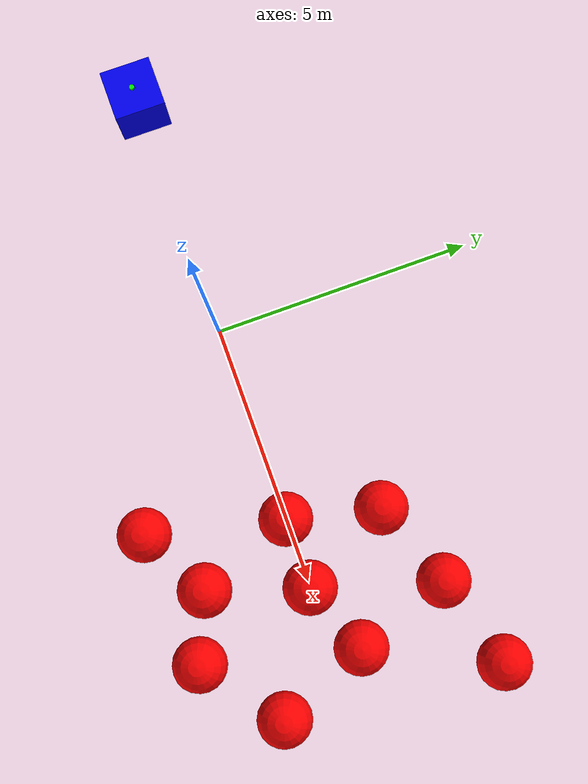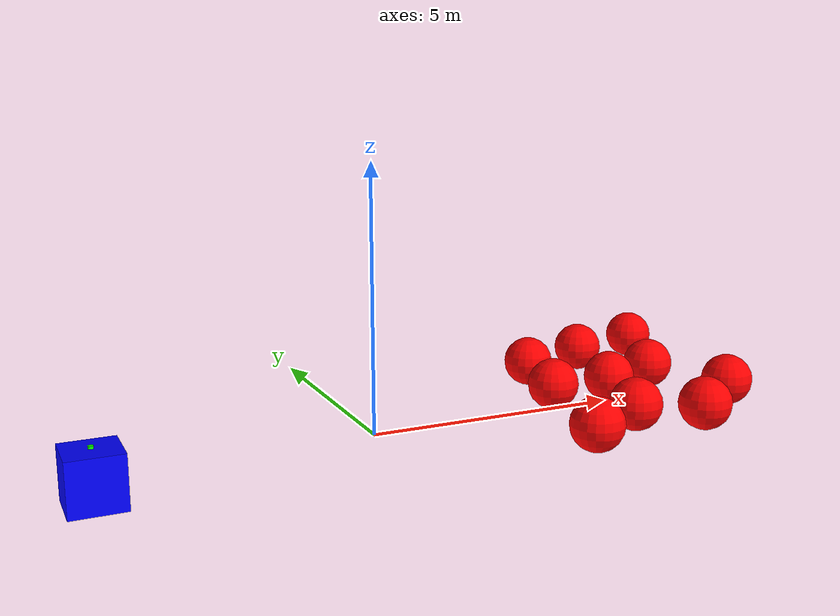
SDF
<?xml version="1.0" ?>
<sdf version="1.8">
    <world name="3d_world">
        <physics name="1ms" type="ode">
            <max_step_size>0.001</max_step_size>
            <real_time_factor>1.0</real_time_factor>
            <real_time_update_rate>1000.0</real_time_update_rate>
        </physics>
        <gravity>0 0 0</gravity> <!-- World-level gravity disabled -->

        <plugin
            filename="gz-sim-physics-system"
            name="gz::sim::v8::systems::Physics">
        </plugin>
        <plugin
            filename="libignition-gazebo-user-commands-system.so"
            name="ignition::gazebo::systems::UserCommands">
        </plugin>
        <plugin
            filename="gz-sim-scene-broadcaster-system"
            name="gz::sim::systems::SceneBroadcaster">
        </plugin>
        <!-- Added Sensors system plugin -->
        <plugin
            filename="gz-sim-sensors-system"
            name="gz::sim::systems::Sensors">
            <render_engine>ogre2</render_engine>
        </plugin>

        <light type="directional" name="sun">
            <cast_shadows>true</cast_shadows>
            <pose>0 0 10 0 0 0</pose>
            <diffuse>0.8 0.8 0.8 1</diffuse>
            <specular>0.2 0.2 0.2 1</specular>
            <attenuation>
                <range>1000</range>
                <constant>0.9</constant>
                <linear>0.01</linear>
                <quadratic>0.001</quadratic>
            </attenuation>
            <direction>-0.5 0.1 -0.9</direction>
        </light>

        <!--!AGENTE -->
        <model name='agente' canonical_link='chassis'>
            <pose relative_to='world'>-5.0 0 0.0 0 0 0</pose> <!-- Adjusted z-position to 0.0 -->
            <link name='chassis'>
                <pose relative_to='__model__'>0.0 0 0.0 0 0 0</pose>
                <inertial>
                    <mass>1.14395</mass>
                    <inertia>
                        <ixx>0.095329</ixx>
                        <ixy>0</ixy>
                        <ixz>0</ixz>
                        <iyy>0.381317</iyy>
                        <iyz>0</iyz>
                        <izz>0.476646</izz>
                    </inertia>
                </inertial>
                <visual name='visual'>
                    <geometry>
                        <box>
                            <size>1.0 1.0 1.0</size> <!-- Changed height to 1.0 for cube chassis -->
                        </box>
                    </geometry>
                    <material>
                        <ambient>0.0 0.0 1.0 1</ambient>
                        <diffuse>0.0 0.0 1.0 1</diffuse>
                        <specular>0.0 0.0 1.0 1</specular>
                    </material>
                </visual>
                <collision name='collision'>
                    <geometry>
                        <box>
                            <size>1.0 1.0 1.0</size>
                        </box>
                    </geometry>
                </collision>
                <enable_gravity>false</enable_gravity>
            </link>

            <!-- Added LiDAR link -->
            <link name='lidar_link'>
                <pose relative_to='chassis'>0.0 0 0.5 0 0 0</pose>
                <inertial>
                    <mass>0.1</mass>
                    <inertia>
                        <ixx>0.000166667</ixx>
                        <iyy>0.000166667</iyy>
                        <izz>0.000166667</izz>
                    </inertia>
                </inertial>
                <collision name='collision'>
                    <geometry>
                        <cylinder>
                            <radius>0.05</radius>
                            <length>0.1</length>
                        </cylinder>
                    </geometry>
                </collision>
                <visual name='visual'>
                    <geometry>
                        <cylinder>
                            <radius>0.05</radius>
                            <length>0.1</length>
                        </cylinder>
                    </geometry>
                    <material>
                        <ambient>0.0 1.0 0.0 1</ambient>
                        <diffuse>0.0 1.0 0.0 1</diffuse>
                        <specular>0.0 1.0 0.0 1</specular>
                    </material>
                </visual>
                <sensor name="lidar" type="gpu_lidar">
                    <topic>scan</topic>
                    <update_rate>10</update_rate>
                    <lidar>
                        <scan>
                            <horizontal>
                                <samples>5000</samples>
                                <resolution>1</resolution>
                                <min_angle>-3.14159</min_angle>
                                <max_angle>3.14159</max_angle>
                            </horizontal>
                        </scan>
                        <range>
                            <min>0.1</min>
                            <max>10.0</max>
                            <resolution>0.01</resolution>
                        </range>
                    </lidar>
                    <visualize>true</visualize>
                    <always_on>true</always_on>
                    <update_rate>10</update_rate>
                    <pose_frame>lidar</pose_frame>
                </sensor>
                <enable_gravity>false</enable_gravity>
            </link>

            <!-- Added joint to connect LiDAR to chassis -->
            <joint name="lidar_joint" type="fixed">
                <parent>chassis</parent>
                <child>lidar_link</child>
            </joint>

            <!-- plugin to publish-->
            <plugin
                filename="ignition-gazebo-joint-state-publisher-system"
                name="ignition::gazebo::systems::JointStatePublisher">
            </plugin>

            <plugin
                filename="ignition-gazebo-odometry-publisher-system"
                name="ignition::gazebo::systems::OdometryPublisher">
                <dimensions>3</dimensions>
            </plugin>

            <plugin
                filename="ignition-gazebo-velocity-control-system"
                name="ignition::gazebo::systems::VelocityControl">
                <initial_linear>0.0 0 0</initial_linear>
                <initial_angular>0 0 0.0</initial_angular>
            </plugin>

            <plugin
                filename="libignition-gazebo-pose-publisher-system.so"
                name="ignition::gazebo::systems::PosePublisher">
                <topic>/agente/pose</topic>
                <frame_id>agente</frame_id>
                <update_rate>30</update_rate>
            </plugin>
        </model>

        <!-- !OBSTACULO 1 -->
        <model name='obstacle_1' canonical_link='obstacle'>
            <static>true</static>
            <pose relative_to='world'>3.2 -2.5 0.5 0 0 0</pose>
            <link name='obstacle'>
                <pose relative_to='__model__'>0.0 0 0.0 0 0 0</pose>
                <visual name='visual'>
                    <geometry>
                        <sphere>
                            <radius>0.5</radius>
                        </sphere>
                    </geometry>
                    <material>
                        <ambient>1.0 0.0 0.0 1</ambient>
                        <diffuse>1.0 0.0 0.0 1</diffuse>
                        <specular>1.0 0.0 0.0 1</specular>
                    </material>
                </visual>
                <collision name='collision'>
                    <geometry>
                        <sphere>
                            <radius>0.5</radius>
                        </sphere>
                    </geometry>
                </collision>
                <enable_gravity>false</enable_gravity>
            </link>

            <plugin
                filename="ignition-gazebo-velocity-control-system"
                name="ignition::gazebo::systems::VelocityControl">
                <initial_linear>0.0 0 0</initial_linear>
                <initial_angular>0 0 0.0</initial_angular>
            </plugin>

            <plugin
                filename="ignition-gazebo-odometry-publisher-system"
                name="ignition::gazebo::systems::OdometryPublisher">
                <dimensions>3</dimensions>
            </plugin>
        </model>

        <!-- !OBSTACULO 2 -->
        <model name='obstacle_2' canonical_link='obstacle'>
            <static>true</static>
            <pose relative_to='world'>4.5 -1.8 0.5 0 0 0</pose>
            <link name='obstacle'>
                <pose relative_to='__model__'>0.0 0 0.0 0 0 0</pose>
                <visual name='visual'>
                    <geometry>
                        <sphere>
                            <radius>0.5</radius>
                        </sphere>
                    </geometry>
                    <material>
                        <ambient>1.0 0.0 0.0 1</ambient>
                        <diffuse>1.0 0.0 0.0 1</diffuse>
                        <specular>1.0 0.0 0.0 1</specular>
                    </material>
                </visual>
                <collision name='collision'>
                    <geometry>
                        <sphere>
                            <radius>0.5</radius>
                        </sphere>
                    </geometry>
                </collision>
                <enable_gravity>false</enable_gravity>
            </link>

            <plugin
                filename="ignition-gazebo-velocity-control-system"
                name="ignition::gazebo::systems::VelocityControl">
                <initial_linear>0.0 0 0</initial_linear>
                <initial_angular>0 0 0.0</initial_angular>
            </plugin>

            <plugin
                filename="ignition-gazebo-odometry-publisher-system"
                name="ignition::gazebo::systems::OdometryPublisher">
                <dimensions>3</dimensions>
            </plugin>
        </model>

        <!-- !OBSTACULO 3 -->
        <model name='obstacle_3' canonical_link='obstacle'>
            <static>true</static>
            <pose relative_to='world'>5.7 -2.3 0.5 0 0 0</pose>
            <link name='obstacle'>
                <pose relative_to='__model__'>0.0 0 0.0 0 0 0</pose>
                <visual name='visual'>
                    <geometry>
                        <sphere>
                            <radius>0.5</radius>
                        </sphere>
                    </geometry>
                    <material>
                        <ambient>1.0 0.0 0.0 1</ambient>
                        <diffuse>1.0 0.0 0.0 1</diffuse>
                        <specular>1.0 0.0 0.0 1</specular>
                    </material>
                </visual>
                <collision name='collision'>
                    <geometry>
                        <sphere>
                            <radius>0.5</radius>
                        </sphere>
                    </geometry>
                </collision>
                <enable_gravity>false</enable_gravity>
            </link>

            <plugin
                filename="ignition-gazebo-velocity-control-system"
                name="ignition::gazebo::systems::VelocityControl">
                <initial_linear>0.0 0 0</initial_linear>
                <initial_angular>0 0 0.0</initial_angular>
            </plugin>

            <plugin
                filename="ignition-gazebo-odometry-publisher-system"
                name="ignition::gazebo::systems::OdometryPublisher">
                <dimensions>3</dimensions>
            </plugin>
        </model>

        <!-- !OBSTACULO 4 -->
        <model name='obstacle_4' canonical_link='obstacle'>
            <static>true</static>
            <pose relative_to='world'>7.1 -1.2 0.5 0 0 0</pose>
            <link name='obstacle'>
                <pose relative_to='__model__'>0.0 0 0.0 0 0 0</pose>
                <visual name='visual'>
                    <geometry>
                        <sphere>
                            <radius>0.5</radius>
                        </sphere>
                    </geometry>
                    <material>
                        <ambient>1.0 0.0 0.0 1</ambient>
                        <diffuse>1.0 0.0 0.0 1</diffuse>
                        <specular>1.0 0.0 0.0 1</specular>
                    </material>
                </visual>
                <collision name='collision'>
                    <geometry>
                        <sphere>
                            <radius>0.5</radius>
                        </sphere>
                    </geometry>
                </collision>
                <enable_gravity>false</enable_gravity>
            </link>

            <plugin
                filename="ignition-gazebo-velocity-control-system"
                name="ignition::gazebo::systems::VelocityControl">
                <initial_linear>0.0 0 0</initial_linear>
                <initial_angular>0 0 0.0</initial_angular>
            </plugin>

            <plugin
                filename="ignition-gazebo-odometry-publisher-system"
                name="ignition::gazebo::systems::OdometryPublisher">
                <dimensions>3</dimensions>
            </plugin>
        </model>

        <!-- !OBSTACULO 5 -->
        <model name='obstacle_5' canonical_link='obstacle'>
            <static>true</static>
            <pose relative_to='world'>3.8 0.0 0.5 0 0 0</pose>
            <link name='obstacle'>
                <pose relative_to='__model__'>0.0 0 0.0 0 0 0</pose>
                <visual name='visual'>
                    <geometry>
                        <sphere>
                            <radius>0.5</radius>
                        </sphere>
                    </geometry>
                    <material>
                        <ambient>1.0 0.0 0.0 1</ambient>
                        <diffuse>1.0 0.0 0.0 1</diffuse>
                        <specular>1.0 0.0 0.0 1</specular>
                    </material>
                </visual>
                <collision name='collision'>
                    <geometry>
                        <sphere>
                            <radius>0.5</radius>
                        </sphere>
                    </geometry>
                </collision>
                <enable_gravity>false</enable_gravity>
            </link>

            <plugin
                filename="ignition-gazebo-velocity-control-system"
                name="ignition::gazebo::systems::VelocityControl">
                <initial_linear>0.0 0 0</initial_linear>
                <initial_angular>0 0 0.0</initial_angular>
            </plugin>

            <plugin
                filename="ignition-gazebo-odometry-publisher-system"
                name="ignition::gazebo::systems::OdometryPublisher">
                <dimensions>3</dimensions>
            </plugin>
        </model>

        <!-- !OBSTACULO 6 -->
        <model name='obstacle_6' canonical_link='obstacle'>
            <static>true</static>
            <pose relative_to='world'>5.1 0.0 0.5 0 0 0</pose>
            <link name='obstacle'>
                <pose relative_to='__model__'>0.0 0 0.0 0 0 0</pose>
                <visual name='visual'>
                    <geometry>
                        <sphere>
                            <radius>0.5</radius>
                        </sphere>
                    </geometry>
                    <material>
                        <ambient>1.0 0.0 0.0 1</ambient>
                        <diffuse>1.0 0.0 0.0 1</diffuse>
                        <specular>1.0 0.0 0.0 1</specular>
                    </material>
                </visual>
                <collision name='collision'>
                    <geometry>
                        <sphere>
                            <radius>0.5</radius>
                        </sphere>
                    </geometry>
                </collision>
                <enable_gravity>false</enable_gravity>
            </link>

            <plugin
                filename="ignition-gazebo-velocity-control-system"
                name="ignition::gazebo::systems::VelocityControl">
                <initial_linear>0.0 0 0</initial_linear>
                <initial_angular>0 0 0.0</initial_angular>
            </plugin>

            <plugin
                filename="ignition-gazebo-odometry-publisher-system"
                name="ignition::gazebo::systems::OdometryPublisher">
                <dimensions>3</dimensions>
            </plugin>
        </model>

        <!-- !OBSTACULO 7 -->
        <model name='obstacle_7' canonical_link='obstacle'>
            <static>true</static>
            <pose relative_to='world'>6.4 0.5 0.5 0 0 0</pose>
            <link name='obstacle'>
                <pose relative_to='__model__'>0.0 0 0.0 0 0 0</pose>
                <visual name='visual'>
                    <geometry>
                        <sphere>
                            <radius>0.5</radius>
                        </sphere>
                    </geometry>
                    <material>
                        <ambient>1.0 0.0 0.0 1</ambient>
                        <diffuse>1.0 0.0 0.0 1</diffuse>
                        <specular>1.0 0.0 0.0 1</specular>
                    </material>
                </visual>
                <collision name='collision'>
                    <geometry>
                        <sphere>
                            <radius>0.5</radius>
                        </sphere>
                    </geometry>
                </collision>
                <enable_gravity>false</enable_gravity>
            </link>

            <plugin
                filename="ignition-gazebo-velocity-control-system"
                name="ignition::gazebo::systems::VelocityControl">
                <initial_linear>0.0 0 0</initial_linear>
                <initial_angular>0 0 0.0</initial_angular>
            </plugin>

            <plugin
                filename="ignition-gazebo-odometry-publisher-system"
                name="ignition::gazebo::systems::OdometryPublisher">
                <dimensions>3</dimensions>
            </plugin>
        </model>

        <!-- !OBSTACULO 8 -->
        <model name='obstacle_8' canonical_link='obstacle'>
            <static>true</static>
            <pose relative_to='world'>4.2 1.7 0.5 0 0 0</pose>
            <link name='obstacle'>
                <pose relative_to='__model__'>0.0 0 0.0 0 0 0</pose>
                <visual name='visual'>
                    <geometry>
                        <sphere>
                            <radius>0.5</radius>
                        </sphere>
                    </geometry>
                    <material>
                        <ambient>1.0 0.0 0.0 1</ambient>
                        <diffuse>1.0 0.0 0.0 1</diffuse>
                        <specular>1.0 0.0 0.0 1</specular>
                    </material>
                </visual>
                <collision name='collision'>
                    <geometry>
                        <sphere>
                            <radius>0.5</radius>
                        </sphere>
                    </geometry>
                </collision>
                <enable_gravity>false</enable_gravity>
            </link>

            <plugin
                filename="ignition-gazebo-velocity-control-system"
                name="ignition::gazebo::systems::VelocityControl">
                <initial_linear>0.0 0 0</initial_linear>
                <initial_angular>0 0 0.0</initial_angular>
            </plugin>

            <plugin
                filename="ignition-gazebo-odometry-publisher-system"
                name="ignition::gazebo::systems::OdometryPublisher">
                <dimensions>3</dimensions>
            </plugin>
        </model>

        <!-- !OBSTACULO 9 -->
        <model name='obstacle_9' canonical_link='obstacle'>
            <static>true</static>
            <pose relative_to='world'>5.8 2.3 0.5 0 0 0</pose>
            <link name='obstacle'>
                <pose relative_to='__model__'>0.0 0 0.0 0 0 0</pose>
                <visual name='visual'>
                    <geometry>
                        <sphere>
                            <radius>0.5</radius>
                        </sphere>
                    </geometry>
                    <material>
                        <ambient>1.0 0.0 0.0 1</ambient>
                        <diffuse>1.0 0.0 0.0 1</diffuse>
                        <specular>1.0 0.0 0.0 1</specular>
                    </material>
                </visual>
                <collision name='collision'>
                    <geometry>
                        <sphere>
                            <radius>0.5</radius>
                        </sphere>
                    </geometry>
                </collision>
                <enable_gravity>false</enable_gravity>
            </link>

            <plugin
                filename="ignition-gazebo-velocity-control-system"
                name="ignition::gazebo::systems::VelocityControl">
                <initial_linear>0.0 0 0</initial_linear>
                <initial_angular>0 0 0.0</initial_angular>
            </plugin>

            <plugin
                filename="ignition-gazebo-odometry-publisher-system"
                name="ignition::gazebo::systems::OdometryPublisher">
                <dimensions>3</dimensions>
            </plugin>
        </model>

        <!-- !OBSTACULO 10 -->
        <model name='obstacle_10' canonical_link='obstacle'>
            <static>true</static>
            <pose relative_to='world'>7.5 2.8 0.5 0 0 0</pose>
            <link name='obstacle'>
                <pose relative_to='__model__'>0.0 0 0.0 0 0 0</pose>
                <visual name='visual'>
                    <geometry>
                        <sphere>
                            <radius>0.5</radius>
                        </sphere>
                    </geometry>
                    <material>
                        <ambient>1.0 0.0 0.0 1</ambient>
                        <diffuse>1.0 0.0 0.0 1</diffuse>
                        <specular>1.0 0.0 0.0 1</specular>
                    </material>
                </visual>
                <collision name='collision'>
                    <geometry>
                        <sphere>
                            <radius>0.5</radius>
                        </sphere>
                    </geometry>
                </collision>
                <enable_gravity>false</enable_gravity>
            </link>

            <plugin
                filename="ignition-gazebo-velocity-control-system"
                name="ignition::gazebo::systems::VelocityControl">
                <initial_linear>0.0 0 0</initial_linear>
                <initial_angular>0 0 0.0</initial_angular>
            </plugin>

            <plugin
                filename="ignition-gazebo-odometry-publisher-system"
                name="ignition::gazebo::systems::OdometryPublisher">
                <dimensions>3</dimensions>
            </plugin>
        </model>
    </world>
</sdf>
